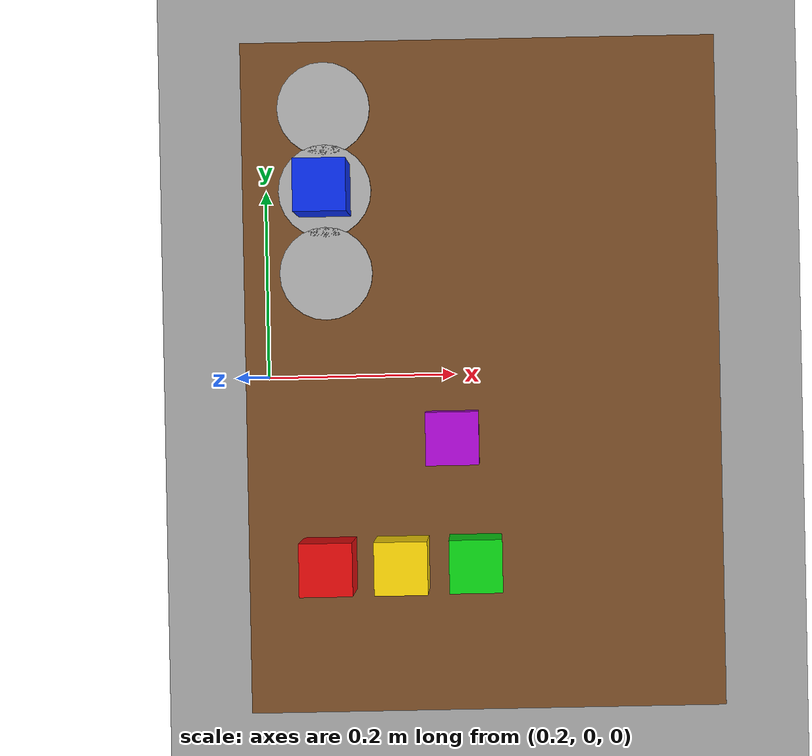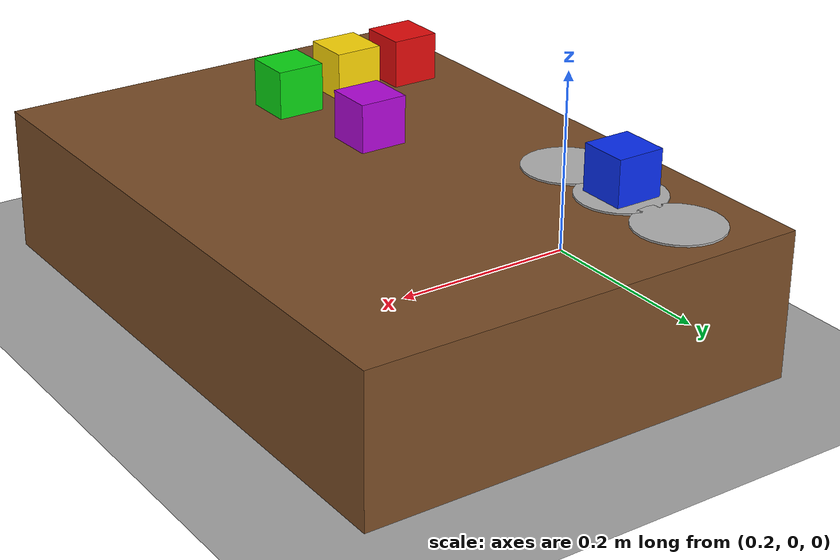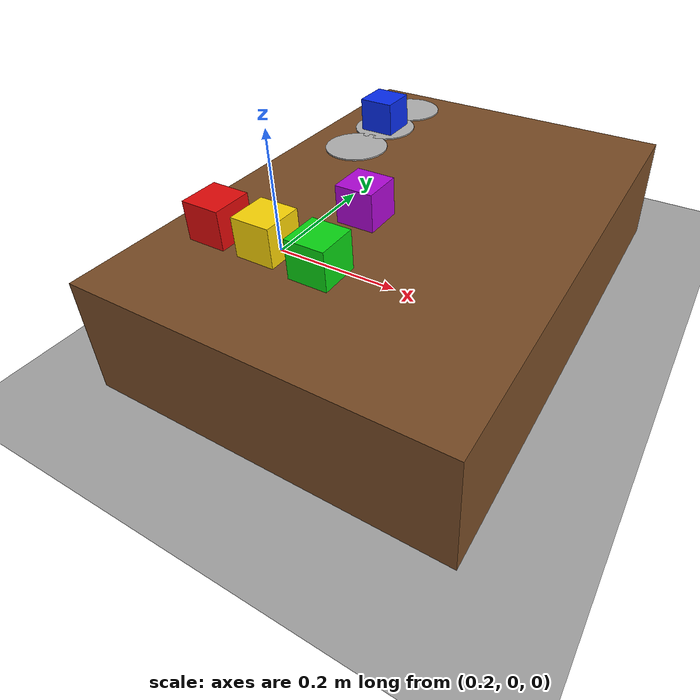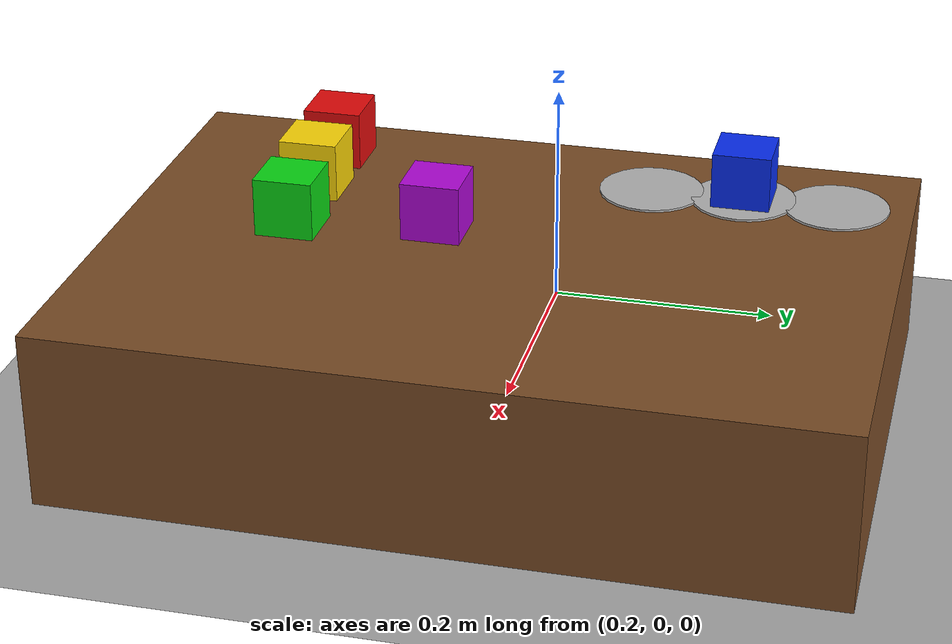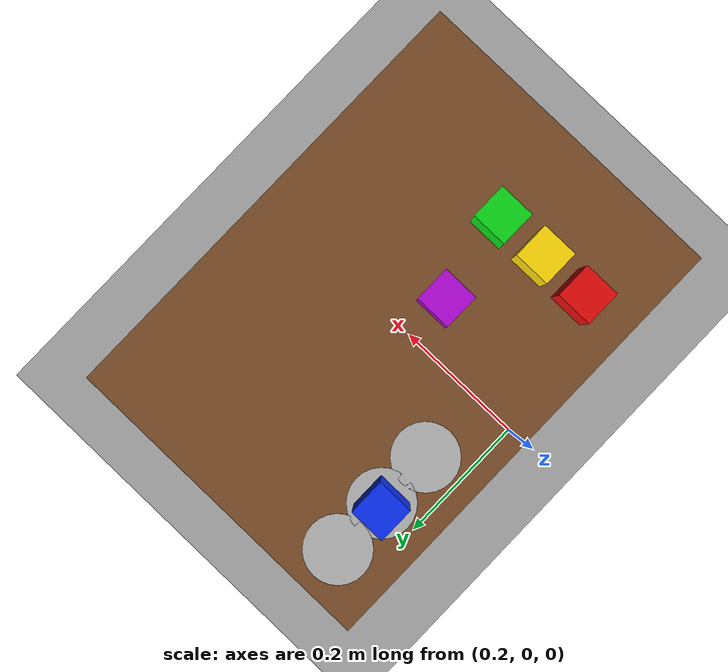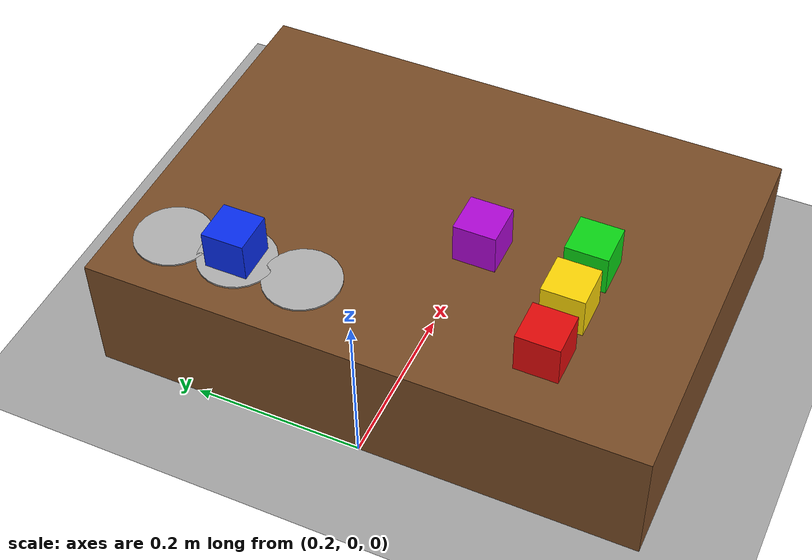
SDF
<?xml version='1.0' encoding='utf-8'?>
<sdf version="1.8">
  <world name="pick_place">
    <physics name="1ms" type="ignored">
      <max_step_size>0.001</max_step_size>
      <real_time_factor>1.0</real_time_factor>
    </physics>
    <plugin filename="ignition-gazebo-physics-system" name="ignition::gazebo::systems::Physics" />
    <plugin filename="ignition-gazebo-user-commands-system" name="ignition::gazebo::systems::UserCommands" />
    <plugin filename="ignition-gazebo-scene-broadcaster-system" name="ignition::gazebo::systems::SceneBroadcaster" />
    <light name="sun" type="directional">
      <cast_shadows>true</cast_shadows>
      <pose>0 0 5 0 0 0</pose>
      <diffuse>0.9 0.9 0.9 1</diffuse>
      <specular>0.2 0.2 0.2 1</specular>
      <direction>-0.5 0.1 -0.9</direction>
    </light>
    <model name="ground_plane">
      <static>true</static>
      <link name="link">
        <collision name="collision">
          <geometry>
            <plane>
              <normal>0 0 1</normal>
              <size>100 100</size>
            </plane>
          </geometry>
        </collision>
        <visual name="visual">
          <geometry>
            <plane>
              <normal>0 0 1</normal>
              <size>100 100</size>
            </plane>
          </geometry>
          <material>
            <ambient>0.65 0.65 0.65 1</ambient>
            <diffuse>0.65 0.65 0.65 1</diffuse>
          </material>
        </visual>
      </link>
    </model>
    <model name="work_table">
      <static>true</static>
      <pose>0.43 0 0.075 0 0 0</pose>
      <link name="table_link">
        <collision name="collision">
          <geometry>
            <box>
              <size>0.46 0.65 0.15</size>
            </box>
          </geometry>
        </collision>
        <visual name="visual">
          <geometry>
            <box>
              <size>0.46 0.65 0.15</size>
            </box>
          </geometry>
          <material>
            <ambient>0.38 0.24 0.12 1</ambient>
            <diffuse>0.48 0.30 0.15 1</diffuse>
          </material>
        </visual>
      </link>
    </model>
    <model name="red_cube">
      <pose>0.28 -0.18 0.18 0 0 0</pose>
      <link name="link">
        <inertial>
          <mass>0.08</mass>
          <inertia>
            <ixx>0.000033</ixx>
            <iyy>0.000033</iyy>
            <izz>0.000033</izz>
          </inertia>
        </inertial>
        <collision name="collision">
          <geometry>
            <box>
              <size>0.05 0.05 0.05</size>
            </box>
          </geometry>
        </collision>
        <visual name="visual">
          <geometry>
            <box>
              <size>0.05 0.05 0.05</size>
            </box>
          </geometry>
          <material>
            <ambient>0.8 0.03 0.03 1</ambient>
            <diffuse>0.9 0.04 0.04 1</diffuse>
          </material>
        </visual>
      </link>
    </model>
    <model name="yellow_cube">
      <pose>0.35 -0.18 0.18 0 0 0</pose>
      <link name="link">
        <inertial>
          <mass>0.08</mass>
          <inertia>
            <ixx>0.000033</ixx>
            <iyy>0.000033</iyy>
            <izz>0.000033</izz>
          </inertia>
        </inertial>
        <collision name="collision">
          <geometry>
            <box>
              <size>0.05 0.05 0.05</size>
            </box>
          </geometry>
        </collision>
        <visual name="visual">
          <geometry>
            <box>
              <size>0.05 0.05 0.05</size>
            </box>
          </geometry>
          <material>
            <ambient>0.9 0.75 0.02 1</ambient>
            <diffuse>1.0 0.85 0.02 1</diffuse>
          </material>
        </visual>
      </link>
    </model>
    <model name="blue_cube">
      <pose>0.28 0.18 0.175 0 0 0</pose>
      <link name="link">
        <inertial>
          <mass>0.08</mass>
          <inertia>
            <ixx>0.000033</ixx>
            <iyy>0.000033</iyy>
            <izz>0.000033</izz>
          </inertia>
        </inertial>
        <collision name="collision">
          <geometry>
            <box>
              <size>0.05 0.05 0.05</size>
            </box>
          </geometry>
        </collision>
        <visual name="visual">
          <geometry>
            <box>
              <size>0.05 0.05 0.05</size>
            </box>
          </geometry>
          <material>
            <ambient>0.02 0.12 0.85 1</ambient>
            <diffuse>0.03 0.18 0.95 1</diffuse>
          </material>
        </visual>
      </link>
    </model>
    <model name="zone_a">
      <static>true</static>
      <pose>0.28 0.10 0.151 0 0 0</pose>
      <link name="link">
        <visual name="visual">
          <geometry>
            <cylinder>
              <radius>0.045</radius>
              <length>0.002</length>
            </cylinder>
          </geometry>
          <material>
            <ambient>0.7 0.7 0.7 1</ambient>
            <diffuse>0.7 0.7 0.7 1</diffuse>
          </material>
        </visual>
      </link>
    </model>
    <model name="zone_b">
      <static>true</static>
      <pose>0.28 0.18 0.151 0 0 0</pose>
      <link name="link">
        <visual name="visual">
          <geometry>
            <cylinder>
              <radius>0.045</radius>
              <length>0.002</length>
            </cylinder>
          </geometry>
          <material>
            <ambient>0.7 0.7 0.7 1</ambient>
            <diffuse>0.7 0.7 0.7 1</diffuse>
          </material>
        </visual>
      </link>
    </model>
    <model name="zone_c">
      <static>true</static>
      <pose>0.28 0.26 0.151 0 0 0</pose>
      <link name="link">
        <visual name="visual">
          <geometry>
            <cylinder>
              <radius>0.045</radius>
              <length>0.002</length>
            </cylinder>
          </geometry>
          <material>
            <ambient>0.7 0.7 0.7 1</ambient>
            <diffuse>0.7 0.7 0.7 1</diffuse>
          </material>
        </visual>
      </link>
    </model>
    <plugin filename="ignition-gazebo-sensors-system" name="ignition::gazebo::systems::Sensors">
      <render_engine>ogre2</render_engine>
    </plugin>
    <model name="green_cube">
      <pose>0.42 -0.18 0.175 0 0 0</pose>
      <link name="link">
        <inertial>
          <mass>0.08</mass>
          <inertia>
            <ixx>0.000033</ixx>
            <iyy>0.000033</iyy>
            <izz>0.000033</izz>
          </inertia>
        </inertial>
        <collision name="collision">
          <geometry>
            <box>
              <size>0.05 0.05 0.05</size>
            </box>
          </geometry>
        </collision>
        <visual name="visual">
          <geometry>
            <box>
              <size>0.05 0.05 0.05</size>
            </box>
          </geometry>
          <material>
            <ambient>0.04 0.85 0.08 1</ambient>
            <diffuse>0.04 0.85 0.08 1</diffuse>
          </material>
        </visual>
      </link>
    </model>
    <model name="purple_cube">
      <pose>0.40 -0.06 0.175 0 0 0</pose>
      <link name="link">
        <inertial>
          <mass>0.08</mass>
          <inertia>
            <ixx>0.000033</ixx>
            <iyy>0.000033</iyy>
            <izz>0.000033</izz>
          </inertia>
        </inertial>
        <collision name="collision">
          <geometry>
            <box>
              <size>0.05 0.05 0.05</size>
            </box>
          </geometry>
        </collision>
        <visual name="visual">
          <geometry>
            <box>
              <size>0.05 0.05 0.05</size>
            </box>
          </geometry>
          <material>
            <ambient>0.7 0.03 0.85 1</ambient>
            <diffuse>0.7 0.03 0.85 1</diffuse>
          </material>
        </visual>
      </link>
    </model>
    <model name="overhead_camera">
      <static>true</static>
      <pose>0.43 0 1.3 0 1.5707963267948966 0</pose>
      <link name="camera_link">
        <sensor name="camera" type="camera">
          <always_on>true</always_on>
          <update_rate>10</update_rate>
          <topic>/camera/image</topic>
          <camera>
            <horizontal_fov>1.0</horizontal_fov>
            <image>
              <width>800</width>
              <height>800</height>
              <format>R8G8B8</format>
            </image>
            <clip>
              <near>0.05</near>
              <far>3</far>
            </clip>
          </camera>
        </sensor>
      </link>
    </model>
  </world>
</sdf>
